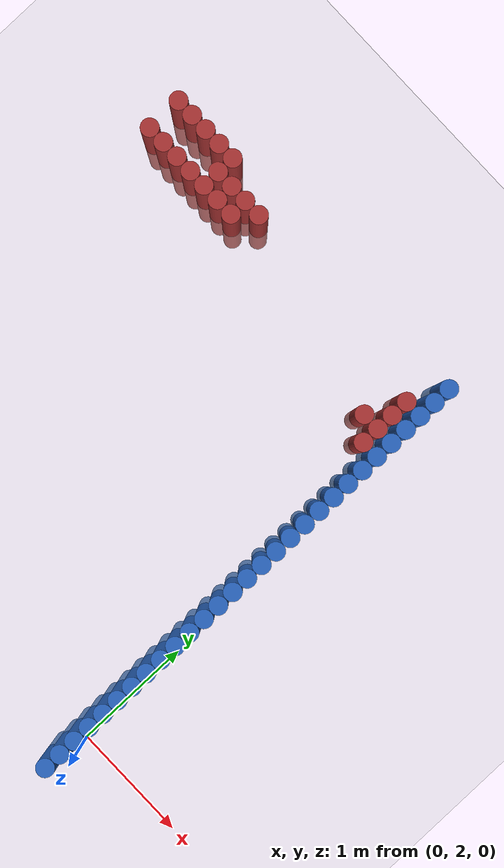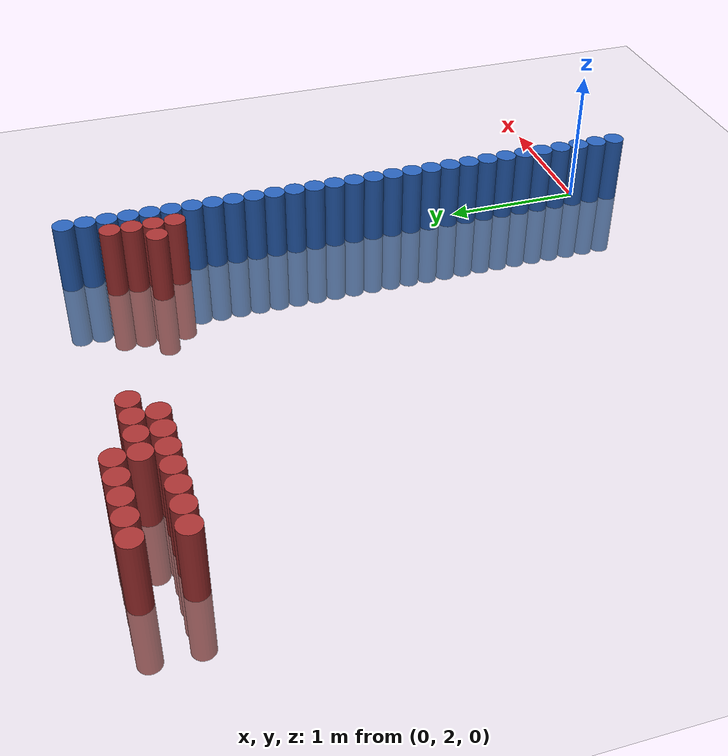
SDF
<sdf version="1.6">
 <world name="default">
  <model name="ground_plane">
   <static>1</static>
   <link name="link">
    <collision name="collision">
     <geometry><plane><normal>0 0 1</normal><size>100 100</size></plane></geometry>
     <surface><friction><ode><mu>100</mu><mu2>50</mu2></ode></friction></surface>
    </collision>
    <visual name="visual">
     <cast_shadows>0</cast_shadows>
     <geometry><plane><normal>0 0 1</normal><size>100 100</size></plane></geometry>
     <material>
      <script><uri>file://media/materials/scripts/gazebo.material</uri><name>Gazebo/Grey</name></script>
     </material>
    </visual>
   </link>
  </model>
  <model name="unit_cylinder_50">
   <static>1</static>
   <pose>-0.075000 1.725000 0.000000 0.000000 0.000000 0.000000</pose>
   <link name="link">
    <inertial>
     <mass>1</mass>
     <inertia><ixx>0.145833</ixx><ixy>0</ixy><ixz>0</ixz><iyy>0.145833</iyy><iyz>0</iyz><izz>0.125</izz></inertia>
    </inertial>
    <collision name="collision">
     <geometry><cylinder><radius>0.075000</radius><length>1</length></cylinder></geometry>
    </collision>
    <visual name="visual">
     <geometry><cylinder><radius>0.075000</radius><length>1</length></cylinder></geometry>
     <material>
      <ambient>0.152000 0.379000 0.720000 1</ambient>
      <diffuse>0.152000 0.379000 0.720000 1</diffuse>
     </material>
     <material>
      <script><name>Gazebo/Grey</name><uri>file://media/materials/scripts/gazebo.material</uri></script>
     </material>
    </visual>
   </link>
  </model>
  <model name="unit_cylinder_52">
   <static>1</static>
   <pose>-0.075000 1.875000 0.000000 0.000000 0.000000 0.000000</pose>
   <link name="link">
    <inertial>
     <mass>1</mass>
     <inertia><ixx>0.145833</ixx><ixy>0</ixy><ixz>0</ixz><iyy>0.145833</iyy><iyz>0</iyz><izz>0.125</izz></inertia>
    </inertial>
    <collision name="collision">
     <geometry><cylinder><radius>0.075000</radius><length>1</length></cylinder></geometry>
    </collision>
    <visual name="visual">
     <geometry><cylinder><radius>0.075000</radius><length>1</length></cylinder></geometry>
     <material>
      <ambient>0.152000 0.379000 0.720000 1</ambient>
      <diffuse>0.152000 0.379000 0.720000 1</diffuse>
     </material>
     <material>
      <script><name>Gazebo/Grey</name><uri>file://media/materials/scripts/gazebo.material</uri></script>
     </material>
    </visual>
   </link>
  </model>
  <model name="unit_cylinder_54">
   <static>1</static>
   <pose>-0.075000 2.025000 0.000000 0.000000 0.000000 0.000000</pose>
   <link name="link">
    <inertial>
     <mass>1</mass>
     <inertia><ixx>0.145833</ixx><ixy>0</ixy><ixz>0</ixz><iyy>0.145833</iyy><iyz>0</iyz><izz>0.125</izz></inertia>
    </inertial>
    <collision name="collision">
     <geometry><cylinder><radius>0.075000</radius><length>1</length></cylinder></geometry>
    </collision>
    <visual name="visual">
     <geometry><cylinder><radius>0.075000</radius><length>1</length></cylinder></geometry>
     <material>
      <ambient>0.152000 0.379000 0.720000 1</ambient>
      <diffuse>0.152000 0.379000 0.720000 1</diffuse>
     </material>
     <material>
      <script><name>Gazebo/Grey</name><uri>file://media/materials/scripts/gazebo.material</uri></script>
     </material>
    </visual>
   </link>
  </model>
  <model name="unit_cylinder_56">
   <static>1</static>
   <pose>-0.075000 2.175000 0.000000 0.000000 0.000000 0.000000</pose>
   <link name="link">
    <inertial>
     <mass>1</mass>
     <inertia><ixx>0.145833</ixx><ixy>0</ixy><ixz>0</ixz><iyy>0.145833</iyy><iyz>0</iyz><izz>0.125</izz></inertia>
    </inertial>
    <collision name="collision">
     <geometry><cylinder><radius>0.075000</radius><length>1</length></cylinder></geometry>
    </collision>
    <visual name="visual">
     <geometry><cylinder><radius>0.075000</radius><length>1</length></cylinder></geometry>
     <material>
      <ambient>0.152000 0.379000 0.720000 1</ambient>
      <diffuse>0.152000 0.379000 0.720000 1</diffuse>
     </material>
     <material>
      <script><name>Gazebo/Grey</name><uri>file://media/materials/scripts/gazebo.material</uri></script>
     </material>
    </visual>
   </link>
  </model>
  <model name="unit_cylinder_58">
   <static>1</static>
   <pose>-0.075000 2.325000 0.000000 0.000000 0.000000 0.000000</pose>
   <link name="link">
    <inertial>
     <mass>1</mass>
     <inertia><ixx>0.145833</ixx><ixy>0</ixy><ixz>0</ixz><iyy>0.145833</iyy><iyz>0</iyz><izz>0.125</izz></inertia>
    </inertial>
    <collision name="collision">
     <geometry><cylinder><radius>0.075000</radius><length>1</length></cylinder></geometry>
    </collision>
    <visual name="visual">
     <geometry><cylinder><radius>0.075000</radius><length>1</length></cylinder></geometry>
     <material>
      <ambient>0.152000 0.379000 0.720000 1</ambient>
      <diffuse>0.152000 0.379000 0.720000 1</diffuse>
     </material>
     <material>
      <script><name>Gazebo/Grey</name><uri>file://media/materials/scripts/gazebo.material</uri></script>
     </material>
    </visual>
   </link>
  </model>
  <model name="unit_cylinder_60">
   <static>1</static>
   <pose>-0.075000 2.475000 0.000000 0.000000 0.000000 0.000000</pose>
   <link name="link">
    <inertial>
     <mass>1</mass>
     <inertia><ixx>0.145833</ixx><ixy>0</ixy><ixz>0</ixz><iyy>0.145833</iyy><iyz>0</iyz><izz>0.125</izz></inertia>
    </inertial>
    <collision name="collision">
     <geometry><cylinder><radius>0.075000</radius><length>1</length></cylinder></geometry>
    </collision>
    <visual name="visual">
     <geometry><cylinder><radius>0.075000</radius><length>1</length></cylinder></geometry>
     <material>
      <ambient>0.152000 0.379000 0.720000 1</ambient>
      <diffuse>0.152000 0.379000 0.720000 1</diffuse>
     </material>
     <material>
      <script><name>Gazebo/Grey</name><uri>file://media/materials/scripts/gazebo.material</uri></script>
     </material>
    </visual>
   </link>
  </model>
  <model name="unit_cylinder_62">
   <static>1</static>
   <pose>-0.075000 2.625000 0.000000 0.000000 0.000000 0.000000</pose>
   <link name="link">
    <inertial>
     <mass>1</mass>
     <inertia><ixx>0.145833</ixx><ixy>0</ixy><ixz>0</ixz><iyy>0.145833</iyy><iyz>0</iyz><izz>0.125</izz></inertia>
    </inertial>
    <collision name="collision">
     <geometry><cylinder><radius>0.075000</radius><length>1</length></cylinder></geometry>
    </collision>
    <visual name="visual">
     <geometry><cylinder><radius>0.075000</radius><length>1</length></cylinder></geometry>
     <material>
      <ambient>0.152000 0.379000 0.720000 1</ambient>
      <diffuse>0.152000 0.379000 0.720000 1</diffuse>
     </material>
     <material>
      <script><name>Gazebo/Grey</name><uri>file://media/materials/scripts/gazebo.material</uri></script>
     </material>
    </visual>
   </link>
  </model>
  <model name="unit_cylinder_64">
   <static>1</static>
   <pose>-0.075000 2.775000 0.000000 0.000000 0.000000 0.000000</pose>
   <link name="link">
    <inertial>
     <mass>1</mass>
     <inertia><ixx>0.145833</ixx><ixy>0</ixy><ixz>0</ixz><iyy>0.145833</iyy><iyz>0</iyz><izz>0.125</izz></inertia>
    </inertial>
    <collision name="collision">
     <geometry><cylinder><radius>0.075000</radius><length>1</length></cylinder></geometry>
    </collision>
    <visual name="visual">
     <geometry><cylinder><radius>0.075000</radius><length>1</length></cylinder></geometry>
     <material>
      <ambient>0.152000 0.379000 0.720000 1</ambient>
      <diffuse>0.152000 0.379000 0.720000 1</diffuse>
     </material>
     <material>
      <script><name>Gazebo/Grey</name><uri>file://media/materials/scripts/gazebo.material</uri></script>
     </material>
    </visual>
   </link>
  </model>
  <model name="unit_cylinder_66">
   <static>1</static>
   <pose>-0.075000 2.925000 0.000000 0.000000 0.000000 0.000000</pose>
   <link name="link">
    <inertial>
     <mass>1</mass>
     <inertia><ixx>0.145833</ixx><ixy>0</ixy><ixz>0</ixz><iyy>0.145833</iyy><iyz>0</iyz><izz>0.125</izz></inertia>
    </inertial>
    <collision name="collision">
     <geometry><cylinder><radius>0.075000</radius><length>1</length></cylinder></geometry>
    </collision>
    <visual name="visual">
     <geometry><cylinder><radius>0.075000</radius><length>1</length></cylinder></geometry>
     <material>
      <ambient>0.152000 0.379000 0.720000 1</ambient>
      <diffuse>0.152000 0.379000 0.720000 1</diffuse>
     </material>
     <material>
      <script><name>Gazebo/Grey</name><uri>file://media/materials/scripts/gazebo.material</uri></script>
     </material>
    </visual>
   </link>
  </model>
  <model name="unit_cylinder_68">
   <static>1</static>
   <pose>-0.075000 3.075000 0.000000 0.000000 0.000000 0.000000</pose>
   <link name="link">
    <inertial>
     <mass>1</mass>
     <inertia><ixx>0.145833</ixx><ixy>0</ixy><ixz>0</ixz><iyy>0.145833</iyy><iyz>0</iyz><izz>0.125</izz></inertia>
    </inertial>
    <collision name="collision">
     <geometry><cylinder><radius>0.075000</radius><length>1</length></cylinder></geometry>
    </collision>
    <visual name="visual">
     <geometry><cylinder><radius>0.075000</radius><length>1</length></cylinder></geometry>
     <material>
      <ambient>0.152000 0.379000 0.720000 1</ambient>
      <diffuse>0.152000 0.379000 0.720000 1</diffuse>
     </material>
     <material>
      <script><name>Gazebo/Grey</name><uri>file://media/materials/scripts/gazebo.material</uri></script>
     </material>
    </visual>
   </link>
  </model>
  <model name="unit_cylinder_70">
   <static>1</static>
   <pose>-0.075000 3.225000 0.000000 0.000000 0.000000 0.000000</pose>
   <link name="link">
    <inertial>
     <mass>1</mass>
     <inertia><ixx>0.145833</ixx><ixy>0</ixy><ixz>0</ixz><iyy>0.145833</iyy><iyz>0</iyz><izz>0.125</izz></inertia>
    </inertial>
    <collision name="collision">
     <geometry><cylinder><radius>0.075000</radius><length>1</length></cylinder></geometry>
    </collision>
    <visual name="visual">
     <geometry><cylinder><radius>0.075000</radius><length>1</length></cylinder></geometry>
     <material>
      <ambient>0.152000 0.379000 0.720000 1</ambient>
      <diffuse>0.152000 0.379000 0.720000 1</diffuse>
     </material>
     <material>
      <script><name>Gazebo/Grey</name><uri>file://media/materials/scripts/gazebo.material</uri></script>
     </material>
    </visual>
   </link>
  </model>
  <model name="unit_cylinder_72">
   <static>1</static>
   <pose>-0.075000 3.375000 0.000000 0.000000 0.000000 0.000000</pose>
   <link name="link">
    <inertial>
     <mass>1</mass>
     <inertia><ixx>0.145833</ixx><ixy>0</ixy><ixz>0</ixz><iyy>0.145833</iyy><iyz>0</iyz><izz>0.125</izz></inertia>
    </inertial>
    <collision name="collision">
     <geometry><cylinder><radius>0.075000</radius><length>1</length></cylinder></geometry>
    </collision>
    <visual name="visual">
     <geometry><cylinder><radius>0.075000</radius><length>1</length></cylinder></geometry>
     <material>
      <ambient>0.152000 0.379000 0.720000 1</ambient>
      <diffuse>0.152000 0.379000 0.720000 1</diffuse>
     </material>
     <material>
      <script><name>Gazebo/Grey</name><uri>file://media/materials/scripts/gazebo.material</uri></script>
     </material>
    </visual>
   </link>
  </model>
  <model name="unit_cylinder_74">
   <static>1</static>
   <pose>-0.075000 3.525000 0.000000 0.000000 0.000000 0.000000</pose>
   <link name="link">
    <inertial>
     <mass>1</mass>
     <inertia><ixx>0.145833</ixx><ixy>0</ixy><ixz>0</ixz><iyy>0.145833</iyy><iyz>0</iyz><izz>0.125</izz></inertia>
    </inertial>
    <collision name="collision">
     <geometry><cylinder><radius>0.075000</radius><length>1</length></cylinder></geometry>
    </collision>
    <visual name="visual">
     <geometry><cylinder><radius>0.075000</radius><length>1</length></cylinder></geometry>
     <material>
      <ambient>0.152000 0.379000 0.720000 1</ambient>
      <diffuse>0.152000 0.379000 0.720000 1</diffuse>
     </material>
     <material>
      <script><name>Gazebo/Grey</name><uri>file://media/materials/scripts/gazebo.material</uri></script>
     </material>
    </visual>
   </link>
  </model>
  <model name="unit_cylinder_76">
   <static>1</static>
   <pose>-0.075000 3.675000 0.000000 0.000000 0.000000 0.000000</pose>
   <link name="link">
    <inertial>
     <mass>1</mass>
     <inertia><ixx>0.145833</ixx><ixy>0</ixy><ixz>0</ixz><iyy>0.145833</iyy><iyz>0</iyz><izz>0.125</izz></inertia>
    </inertial>
    <collision name="collision">
     <geometry><cylinder><radius>0.075000</radius><length>1</length></cylinder></geometry>
    </collision>
    <visual name="visual">
     <geometry><cylinder><radius>0.075000</radius><length>1</length></cylinder></geometry>
     <material>
      <ambient>0.152000 0.379000 0.720000 1</ambient>
      <diffuse>0.152000 0.379000 0.720000 1</diffuse>
     </material>
     <material>
      <script><name>Gazebo/Grey</name><uri>file://media/materials/scripts/gazebo.material</uri></script>
     </material>
    </visual>
   </link>
  </model>
  <model name="unit_cylinder_78">
   <static>1</static>
   <pose>-0.075000 3.825000 0.000000 0.000000 0.000000 0.000000</pose>
   <link name="link">
    <inertial>
     <mass>1</mass>
     <inertia><ixx>0.145833</ixx><ixy>0</ixy><ixz>0</ixz><iyy>0.145833</iyy><iyz>0</iyz><izz>0.125</izz></inertia>
    </inertial>
    <collision name="collision">
     <geometry><cylinder><radius>0.075000</radius><length>1</length></cylinder></geometry>
    </collision>
    <visual name="visual">
     <geometry><cylinder><radius>0.075000</radius><length>1</length></cylinder></geometry>
     <material>
      <ambient>0.152000 0.379000 0.720000 1</ambient>
      <diffuse>0.152000 0.379000 0.720000 1</diffuse>
     </material>
     <material>
      <script><name>Gazebo/Grey</name><uri>file://media/materials/scripts/gazebo.material</uri></script>
     </material>
    </visual>
   </link>
  </model>
  <model name="unit_cylinder_80">
   <static>1</static>
   <pose>-0.075000 3.975000 0.000000 0.000000 0.000000 0.000000</pose>
   <link name="link">
    <inertial>
     <mass>1</mass>
     <inertia><ixx>0.145833</ixx><ixy>0</ixy><ixz>0</ixz><iyy>0.145833</iyy><iyz>0</iyz><izz>0.125</izz></inertia>
    </inertial>
    <collision name="collision">
     <geometry><cylinder><radius>0.075000</radius><length>1</length></cylinder></geometry>
    </collision>
    <visual name="visual">
     <geometry><cylinder><radius>0.075000</radius><length>1</length></cylinder></geometry>
     <material>
      <ambient>0.152000 0.379000 0.720000 1</ambient>
      <diffuse>0.152000 0.379000 0.720000 1</diffuse>
     </material>
     <material>
      <script><name>Gazebo/Grey</name><uri>file://media/materials/scripts/gazebo.material</uri></script>
     </material>
    </visual>
   </link>
  </model>
  <model name="unit_cylinder_82">
   <static>1</static>
   <pose>-0.075000 4.125000 0.000000 0.000000 0.000000 0.000000</pose>
   <link name="link">
    <inertial>
     <mass>1</mass>
     <inertia><ixx>0.145833</ixx><ixy>0</ixy><ixz>0</ixz><iyy>0.145833</iyy><iyz>0</iyz><izz>0.125</izz></inertia>
    </inertial>
    <collision name="collision">
     <geometry><cylinder><radius>0.075000</radius><length>1</length></cylinder></geometry>
    </collision>
    <visual name="visual">
     <geometry><cylinder><radius>0.075000</radius><length>1</length></cylinder></geometry>
     <material>
      <ambient>0.152000 0.379000 0.720000 1</ambient>
      <diffuse>0.152000 0.379000 0.720000 1</diffuse>
     </material>
     <material>
      <script><name>Gazebo/Grey</name><uri>file://media/materials/scripts/gazebo.material</uri></script>
     </material>
    </visual>
   </link>
  </model>
  <model name="unit_cylinder_84">
   <static>1</static>
   <pose>-0.075000 4.275000 0.000000 0.000000 0.000000 0.000000</pose>
   <link name="link">
    <inertial>
     <mass>1</mass>
     <inertia><ixx>0.145833</ixx><ixy>0</ixy><ixz>0</ixz><iyy>0.145833</iyy><iyz>0</iyz><izz>0.125</izz></inertia>
    </inertial>
    <collision name="collision">
     <geometry><cylinder><radius>0.075000</radius><length>1</length></cylinder></geometry>
    </collision>
    <visual name="visual">
     <geometry><cylinder><radius>0.075000</radius><length>1</length></cylinder></geometry>
     <material>
      <ambient>0.152000 0.379000 0.720000 1</ambient>
      <diffuse>0.152000 0.379000 0.720000 1</diffuse>
     </material>
     <material>
      <script><name>Gazebo/Grey</name><uri>file://media/materials/scripts/gazebo.material</uri></script>
     </material>
    </visual>
   </link>
  </model>
  <model name="unit_cylinder_86">
   <static>1</static>
   <pose>-0.075000 4.425000 0.000000 0.000000 0.000000 0.000000</pose>
   <link name="link">
    <inertial>
     <mass>1</mass>
     <inertia><ixx>0.145833</ixx><ixy>0</ixy><ixz>0</ixz><iyy>0.145833</iyy><iyz>0</iyz><izz>0.125</izz></inertia>
    </inertial>
    <collision name="collision">
     <geometry><cylinder><radius>0.075000</radius><length>1</length></cylinder></geometry>
    </collision>
    <visual name="visual">
     <geometry><cylinder><radius>0.075000</radius><length>1</length></cylinder></geometry>
     <material>
      <ambient>0.152000 0.379000 0.720000 1</ambient>
      <diffuse>0.152000 0.379000 0.720000 1</diffuse>
     </material>
     <material>
      <script><name>Gazebo/Grey</name><uri>file://media/materials/scripts/gazebo.material</uri></script>
     </material>
    </visual>
   </link>
  </model>
  <model name="unit_cylinder_88">
   <static>1</static>
   <pose>-0.075000 4.575000 0.000000 0.000000 0.000000 0.000000</pose>
   <link name="link">
    <inertial>
     <mass>1</mass>
     <inertia><ixx>0.145833</ixx><ixy>0</ixy><ixz>0</ixz><iyy>0.145833</iyy><iyz>0</iyz><izz>0.125</izz></inertia>
    </inertial>
    <collision name="collision">
     <geometry><cylinder><radius>0.075000</radius><length>1</length></cylinder></geometry>
    </collision>
    <visual name="visual">
     <geometry><cylinder><radius>0.075000</radius><length>1</length></cylinder></geometry>
     <material>
      <ambient>0.152000 0.379000 0.720000 1</ambient>
      <diffuse>0.152000 0.379000 0.720000 1</diffuse>
     </material>
     <material>
      <script><name>Gazebo/Grey</name><uri>file://media/materials/scripts/gazebo.material</uri></script>
     </material>
    </visual>
   </link>
  </model>
  <model name="unit_cylinder_90">
   <static>1</static>
   <pose>-0.075000 4.725000 0.000000 0.000000 0.000000 0.000000</pose>
   <link name="link">
    <inertial>
     <mass>1</mass>
     <inertia><ixx>0.145833</ixx><ixy>0</ixy><ixz>0</ixz><iyy>0.145833</iyy><iyz>0</iyz><izz>0.125</izz></inertia>
    </inertial>
    <collision name="collision">
     <geometry><cylinder><radius>0.075000</radius><length>1</length></cylinder></geometry>
    </collision>
    <visual name="visual">
     <geometry><cylinder><radius>0.075000</radius><length>1</length></cylinder></geometry>
     <material>
      <ambient>0.152000 0.379000 0.720000 1</ambient>
      <diffuse>0.152000 0.379000 0.720000 1</diffuse>
     </material>
     <material>
      <script><name>Gazebo/Grey</name><uri>file://media/materials/scripts/gazebo.material</uri></script>
     </material>
    </visual>
   </link>
  </model>
  <model name="unit_cylinder_92">
   <static>1</static>
   <pose>-0.075000 4.875000 0.000000 0.000000 0.000000 0.000000</pose>
   <link name="link">
    <inertial>
     <mass>1</mass>
     <inertia><ixx>0.145833</ixx><ixy>0</ixy><ixz>0</ixz><iyy>0.145833</iyy><iyz>0</iyz><izz>0.125</izz></inertia>
    </inertial>
    <collision name="collision">
     <geometry><cylinder><radius>0.075000</radius><length>1</length></cylinder></geometry>
    </collision>
    <visual name="visual">
     <geometry><cylinder><radius>0.075000</radius><length>1</length></cylinder></geometry>
     <material>
      <ambient>0.152000 0.379000 0.720000 1</ambient>
      <diffuse>0.152000 0.379000 0.720000 1</diffuse>
     </material>
     <material>
      <script><name>Gazebo/Grey</name><uri>file://media/materials/scripts/gazebo.material</uri></script>
     </material>
    </visual>
   </link>
  </model>
  <model name="unit_cylinder_94">
   <static>1</static>
   <pose>-0.075000 5.025000 0.000000 0.000000 0.000000 0.000000</pose>
   <link name="link">
    <inertial>
     <mass>1</mass>
     <inertia><ixx>0.145833</ixx><ixy>0</ixy><ixz>0</ixz><iyy>0.145833</iyy><iyz>0</iyz><izz>0.125</izz></inertia>
    </inertial>
    <collision name="collision">
     <geometry><cylinder><radius>0.075000</radius><length>1</length></cylinder></geometry>
    </collision>
    <visual name="visual">
     <geometry><cylinder><radius>0.075000</radius><length>1</length></cylinder></geometry>
     <material>
      <ambient>0.152000 0.379000 0.720000 1</ambient>
      <diffuse>0.152000 0.379000 0.720000 1</diffuse>
     </material>
     <material>
      <script><name>Gazebo/Grey</name><uri>file://media/materials/scripts/gazebo.material</uri></script>
     </material>
    </visual>
   </link>
  </model>
  <model name="unit_cylinder_200">
   <static>1</static>
   <pose>-3.075000 5.625000 0.000000 0.000000 0.000000 0.000000</pose>
   <link name="link">
    <inertial>
     <mass>1</mass>
     <inertia><ixx>0.145833</ixx><ixy>0</ixy><ixz>0</ixz><iyy>0.145833</iyy><iyz>0</iyz><izz>0.125</izz></inertia>
    </inertial>
    <collision name="collision">
     <geometry><cylinder><radius>0.075000</radius><length>1</length></cylinder></geometry>
    </collision>
    <visual name="visual">
     <geometry><cylinder><radius>0.075000</radius><length>1</length></cylinder></geometry>
     <material>
      <ambient>0.648000 0.192000 0.192000 1</ambient>
      <diffuse>0.648000 0.192000 0.192000 1</diffuse>
     </material>
     <material>
      <script><name>Gazebo/Grey</name><uri>file://media/materials/scripts/gazebo.material</uri></script>
     </material>
    </visual>
   </link>
  </model>
  <model name="unit_cylinder_201">
   <static>1</static>
   <pose>-3.075000 5.925000 0.000000 0.000000 0.000000 0.000000</pose>
   <link name="link">
    <inertial>
     <mass>1</mass>
     <inertia><ixx>0.145833</ixx><ixy>0</ixy><ixz>0</ixz><iyy>0.145833</iyy><iyz>0</iyz><izz>0.125</izz></inertia>
    </inertial>
    <collision name="collision">
     <geometry><cylinder><radius>0.075000</radius><length>1</length></cylinder></geometry>
    </collision>
    <visual name="visual">
     <geometry><cylinder><radius>0.075000</radius><length>1</length></cylinder></geometry>
     <material>
      <ambient>0.648000 0.192000 0.192000 1</ambient>
      <diffuse>0.648000 0.192000 0.192000 1</diffuse>
     </material>
     <material>
      <script><name>Gazebo/Grey</name><uri>file://media/materials/scripts/gazebo.material</uri></script>
     </material>
    </visual>
   </link>
  </model>
  <model name="unit_cylinder_206">
   <static>1</static>
   <pose>-2.925000 5.625000 0.000000 0.000000 0.000000 0.000000</pose>
   <link name="link">
    <inertial>
     <mass>1</mass>
     <inertia><ixx>0.145833</ixx><ixy>0</ixy><ixz>0</ixz><iyy>0.145833</iyy><iyz>0</iyz><izz>0.125</izz></inertia>
    </inertial>
    <collision name="collision">
     <geometry><cylinder><radius>0.075000</radius><length>1</length></cylinder></geometry>
    </collision>
    <visual name="visual">
     <geometry><cylinder><radius>0.075000</radius><length>1</length></cylinder></geometry>
     <material>
      <ambient>0.648000 0.192000 0.192000 1</ambient>
      <diffuse>0.648000 0.192000 0.192000 1</diffuse>
     </material>
     <material>
      <script><name>Gazebo/Grey</name><uri>file://media/materials/scripts/gazebo.material</uri></script>
     </material>
    </visual>
   </link>
  </model>
  <model name="unit_cylinder_207">
   <static>1</static>
   <pose>-2.925000 5.925000 0.000000 0.000000 0.000000 0.000000</pose>
   <link name="link">
    <inertial>
     <mass>1</mass>
     <inertia><ixx>0.145833</ixx><ixy>0</ixy><ixz>0</ixz><iyy>0.145833</iyy><iyz>0</iyz><izz>0.125</izz></inertia>
    </inertial>
    <collision name="collision">
     <geometry><cylinder><radius>0.075000</radius><length>1</length></cylinder></geometry>
    </collision>
    <visual name="visual">
     <geometry><cylinder><radius>0.075000</radius><length>1</length></cylinder></geometry>
     <material>
      <ambient>0.648000 0.192000 0.192000 1</ambient>
      <diffuse>0.648000 0.192000 0.192000 1</diffuse>
     </material>
     <material>
      <script><name>Gazebo/Grey</name><uri>file://media/materials/scripts/gazebo.material</uri></script>
     </material>
    </visual>
   </link>
  </model>
  <model name="unit_cylinder_213">
   <static>1</static>
   <pose>-2.775000 5.625000 0.000000 0.000000 0.000000 0.000000</pose>
   <link name="link">
    <inertial>
     <mass>1</mass>
     <inertia><ixx>0.145833</ixx><ixy>0</ixy><ixz>0</ixz><iyy>0.145833</iyy><iyz>0</iyz><izz>0.125</izz></inertia>
    </inertial>
    <collision name="collision">
     <geometry><cylinder><radius>0.075000</radius><length>1</length></cylinder></geometry>
    </collision>
    <visual name="visual">
     <geometry><cylinder><radius>0.075000</radius><length>1</length></cylinder></geometry>
     <material>
      <ambient>0.648000 0.192000 0.192000 1</ambient>
      <diffuse>0.648000 0.192000 0.192000 1</diffuse>
     </material>
     <material>
      <script><name>Gazebo/Grey</name><uri>file://media/materials/scripts/gazebo.material</uri></script>
     </material>
    </visual>
   </link>
  </model>
  <model name="unit_cylinder_214">
   <static>1</static>
   <pose>-2.775000 5.925000 0.000000 0.000000 0.000000 0.000000</pose>
   <link name="link">
    <inertial>
     <mass>1</mass>
     <inertia><ixx>0.145833</ixx><ixy>0</ixy><ixz>0</ixz><iyy>0.145833</iyy><iyz>0</iyz><izz>0.125</izz></inertia>
    </inertial>
    <collision name="collision">
     <geometry><cylinder><radius>0.075000</radius><length>1</length></cylinder></geometry>
    </collision>
    <visual name="visual">
     <geometry><cylinder><radius>0.075000</radius><length>1</length></cylinder></geometry>
     <material>
      <ambient>0.648000 0.192000 0.192000 1</ambient>
      <diffuse>0.648000 0.192000 0.192000 1</diffuse>
     </material>
     <material>
      <script><name>Gazebo/Grey</name><uri>file://media/materials/scripts/gazebo.material</uri></script>
     </material>
    </visual>
   </link>
  </model>
  <model name="unit_cylinder_218">
   <static>1</static>
   <pose>-2.625000 5.625000 0.000000 0.000000 0.000000 0.000000</pose>
   <link name="link">
    <inertial>
     <mass>1</mass>
     <inertia><ixx>0.145833</ixx><ixy>0</ixy><ixz>0</ixz><iyy>0.145833</iyy><iyz>0</iyz><izz>0.125</izz></inertia>
    </inertial>
    <collision name="collision">
     <geometry><cylinder><radius>0.075000</radius><length>1</length></cylinder></geometry>
    </collision>
    <visual name="visual">
     <geometry><cylinder><radius>0.075000</radius><length>1</length></cylinder></geometry>
     <material>
      <ambient>0.648000 0.192000 0.192000 1</ambient>
      <diffuse>0.648000 0.192000 0.192000 1</diffuse>
     </material>
     <material>
      <script><name>Gazebo/Grey</name><uri>file://media/materials/scripts/gazebo.material</uri></script>
     </material>
    </visual>
   </link>
  </model>
  <model name="unit_cylinder_219">
   <static>1</static>
   <pose>-2.625000 5.925000 0.000000 0.000000 0.000000 0.000000</pose>
   <link name="link">
    <inertial>
     <mass>1</mass>
     <inertia><ixx>0.145833</ixx><ixy>0</ixy><ixz>0</ixz><iyy>0.145833</iyy><iyz>0</iyz><izz>0.125</izz></inertia>
    </inertial>
    <collision name="collision">
     <geometry><cylinder><radius>0.075000</radius><length>1</length></cylinder></geometry>
    </collision>
    <visual name="visual">
     <geometry><cylinder><radius>0.075000</radius><length>1</length></cylinder></geometry>
     <material>
      <ambient>0.648000 0.192000 0.192000 1</ambient>
      <diffuse>0.648000 0.192000 0.192000 1</diffuse>
     </material>
     <material>
      <script><name>Gazebo/Grey</name><uri>file://media/materials/scripts/gazebo.material</uri></script>
     </material>
    </visual>
   </link>
  </model>
  <model name="unit_cylinder_223">
   <static>1</static>
   <pose>-2.475000 5.625000 0.000000 0.000000 0.000000 0.000000</pose>
   <link name="link">
    <inertial>
     <mass>1</mass>
     <inertia><ixx>0.145833</ixx><ixy>0</ixy><ixz>0</ixz><iyy>0.145833</iyy><iyz>0</iyz><izz>0.125</izz></inertia>
    </inertial>
    <collision name="collision">
     <geometry><cylinder><radius>0.075000</radius><length>1</length></cylinder></geometry>
    </collision>
    <visual name="visual">
     <geometry><cylinder><radius>0.075000</radius><length>1</length></cylinder></geometry>
     <material>
      <ambient>0.648000 0.192000 0.192000 1</ambient>
      <diffuse>0.648000 0.192000 0.192000 1</diffuse>
     </material>
     <material>
      <script><name>Gazebo/Grey</name><uri>file://media/materials/scripts/gazebo.material</uri></script>
     </material>
    </visual>
   </link>
  </model>
  <model name="unit_cylinder_224">
   <static>1</static>
   <pose>-2.475000 5.775000 0.000000 0.000000 0.000000 0.000000</pose>
   <link name="link">
    <inertial>
     <mass>1</mass>
     <inertia><ixx>0.145833</ixx><ixy>0</ixy><ixz>0</ixz><iyy>0.145833</iyy><iyz>0</iyz><izz>0.125</izz></inertia>
    </inertial>
    <collision name="collision">
     <geometry><cylinder><radius>0.075000</radius><length>1</length></cylinder></geometry>
    </collision>
    <visual name="visual">
     <geometry><cylinder><radius>0.075000</radius><length>1</length></cylinder></geometry>
     <material>
      <ambient>0.648000 0.192000 0.192000 1</ambient>
      <diffuse>0.648000 0.192000 0.192000 1</diffuse>
     </material>
     <material>
      <script><name>Gazebo/Grey</name><uri>file://media/materials/scripts/gazebo.material</uri></script>
     </material>
    </visual>
   </link>
  </model>
  <model name="unit_cylinder_225">
   <static>1</static>
   <pose>-2.475000 5.925000 0.000000 0.000000 0.000000 0.000000</pose>
   <link name="link">
    <inertial>
     <mass>1</mass>
     <inertia><ixx>0.145833</ixx><ixy>0</ixy><ixz>0</ixz><iyy>0.145833</iyy><iyz>0</iyz><izz>0.125</izz></inertia>
    </inertial>
    <collision name="collision">
     <geometry><cylinder><radius>0.075000</radius><length>1</length></cylinder></geometry>
    </collision>
    <visual name="visual">
     <geometry><cylinder><radius>0.075000</radius><length>1</length></cylinder></geometry>
     <material>
      <ambient>0.648000 0.192000 0.192000 1</ambient>
      <diffuse>0.648000 0.192000 0.192000 1</diffuse>
     </material>
     <material>
      <script><name>Gazebo/Grey</name><uri>file://media/materials/scripts/gazebo.material</uri></script>
     </material>
    </visual>
   </link>
  </model>
  <model name="unit_cylinder_233">
   <static>1</static>
   <pose>-2.325000 5.625000 0.000000 0.000000 0.000000 0.000000</pose>
   <link name="link">
    <inertial>
     <mass>1</mass>
     <inertia><ixx>0.145833</ixx><ixy>0</ixy><ixz>0</ixz><iyy>0.145833</iyy><iyz>0</iyz><izz>0.125</izz></inertia>
    </inertial>
    <collision name="collision">
     <geometry><cylinder><radius>0.075000</radius><length>1</length></cylinder></geometry>
    </collision>
    <visual name="visual">
     <geometry><cylinder><radius>0.075000</radius><length>1</length></cylinder></geometry>
     <material>
      <ambient>0.648000 0.192000 0.192000 1</ambient>
      <diffuse>0.648000 0.192000 0.192000 1</diffuse>
     </material>
     <material>
      <script><name>Gazebo/Grey</name><uri>file://media/materials/scripts/gazebo.material</uri></script>
     </material>
    </visual>
   </link>
  </model>
  <model name="unit_cylinder_234">
   <static>1</static>
   <pose>-2.325000 5.775000 0.000000 0.000000 0.000000 0.000000</pose>
   <link name="link">
    <inertial>
     <mass>1</mass>
     <inertia><ixx>0.145833</ixx><ixy>0</ixy><ixz>0</ixz><iyy>0.145833</iyy><iyz>0</iyz><izz>0.125</izz></inertia>
    </inertial>
    <collision name="collision">
     <geometry><cylinder><radius>0.075000</radius><length>1</length></cylinder></geometry>
    </collision>
    <visual name="visual">
     <geometry><cylinder><radius>0.075000</radius><length>1</length></cylinder></geometry>
     <material>
      <ambient>0.648000 0.192000 0.192000 1</ambient>
      <diffuse>0.648000 0.192000 0.192000 1</diffuse>
     </material>
     <material>
      <script><name>Gazebo/Grey</name><uri>file://media/materials/scripts/gazebo.material</uri></script>
     </material>
    </visual>
   </link>
  </model>
  <model name="unit_cylinder_245">
   <static>1</static>
   <pose>-2.175000 5.625000 0.000000 0.000000 0.000000 0.000000</pose>
   <link name="link">
    <inertial>
     <mass>1</mass>
     <inertia><ixx>0.145833</ixx><ixy>0</ixy><ixz>0</ixz><iyy>0.145833</iyy><iyz>0</iyz><izz>0.125</izz></inertia>
    </inertial>
    <collision name="collision">
     <geometry><cylinder><radius>0.075000</radius><length>1</length></cylinder></geometry>
    </collision>
    <visual name="visual">
     <geometry><cylinder><radius>0.075000</radius><length>1</length></cylinder></geometry>
     <material>
      <ambient>0.648000 0.192000 0.192000 1</ambient>
      <diffuse>0.648000 0.192000 0.192000 1</diffuse>
     </material>
     <material>
      <script><name>Gazebo/Grey</name><uri>file://media/materials/scripts/gazebo.material</uri></script>
     </material>
    </visual>
   </link>
  </model>
  <model name="unit_cylinder_246">
   <static>1</static>
   <pose>-2.175000 5.775000 0.000000 0.000000 0.000000 0.000000</pose>
   <link name="link">
    <inertial>
     <mass>1</mass>
     <inertia><ixx>0.145833</ixx><ixy>0</ixy><ixz>0</ixz><iyy>0.145833</iyy><iyz>0</iyz><izz>0.125</izz></inertia>
    </inertial>
    <collision name="collision">
     <geometry><cylinder><radius>0.075000</radius><length>1</length></cylinder></geometry>
    </collision>
    <visual name="visual">
     <geometry><cylinder><radius>0.075000</radius><length>1</length></cylinder></geometry>
     <material>
      <ambient>0.648000 0.192000 0.192000 1</ambient>
      <diffuse>0.648000 0.192000 0.192000 1</diffuse>
     </material>
     <material>
      <script><name>Gazebo/Grey</name><uri>file://media/materials/scripts/gazebo.material</uri></script>
     </material>
    </visual>
   </link>
  </model>
  <model name="unit_cylinder_255">
   <static>1</static>
   <pose>-2.025000 5.775000 0.000000 0.000000 0.000000 0.000000</pose>
   <link name="link">
    <inertial>
     <mass>1</mass>
     <inertia><ixx>0.145833</ixx><ixy>0</ixy><ixz>0</ixz><iyy>0.145833</iyy><iyz>0</iyz><izz>0.125</izz></inertia>
    </inertial>
    <collision name="collision">
     <geometry><cylinder><radius>0.075000</radius><length>1</length></cylinder></geometry>
    </collision>
    <visual name="visual">
     <geometry><cylinder><radius>0.075000</radius><length>1</length></cylinder></geometry>
     <material>
      <ambient>0.648000 0.192000 0.192000 1</ambient>
      <diffuse>0.648000 0.192000 0.192000 1</diffuse>
     </material>
     <material>
      <script><name>Gazebo/Grey</name><uri>file://media/materials/scripts/gazebo.material</uri></script>
     </material>
    </visual>
   </link>
  </model>
  <model name="unit_cylinder_285">
   <static>1</static>
   <pose>-0.375000 5.325000 0.000000 0.000000 0.000000 0.000000</pose>
   <link name="link">
    <inertial>
     <mass>1</mass>
     <inertia><ixx>0.145833</ixx><ixy>0</ixy><ixz>0</ixz><iyy>0.145833</iyy><iyz>0</iyz><izz>0.125</izz></inertia>
    </inertial>
    <collision name="collision">
     <geometry><cylinder><radius>0.075000</radius><length>1</length></cylinder></geometry>
    </collision>
    <visual name="visual">
     <geometry><cylinder><radius>0.075000</radius><length>1</length></cylinder></geometry>
     <material>
      <ambient>0.648000 0.192000 0.192000 1</ambient>
      <diffuse>0.648000 0.192000 0.192000 1</diffuse>
     </material>
     <material>
      <script><name>Gazebo/Grey</name><uri>file://media/materials/scripts/gazebo.material</uri></script>
     </material>
    </visual>
   </link>
  </model>
  <model name="unit_cylinder_294">
   <static>1</static>
   <pose>-0.225000 5.175000 0.000000 0.000000 0.000000 0.000000</pose>
   <link name="link">
    <inertial>
     <mass>1</mass>
     <inertia><ixx>0.145833</ixx><ixy>0</ixy><ixz>0</ixz><iyy>0.145833</iyy><iyz>0</iyz><izz>0.125</izz></inertia>
    </inertial>
    <collision name="collision">
     <geometry><cylinder><radius>0.075000</radius><length>1</length></cylinder></geometry>
    </collision>
    <visual name="visual">
     <geometry><cylinder><radius>0.075000</radius><length>1</length></cylinder></geometry>
     <material>
      <ambient>0.648000 0.192000 0.192000 1</ambient>
      <diffuse>0.648000 0.192000 0.192000 1</diffuse>
     </material>
     <material>
      <script><name>Gazebo/Grey</name><uri>file://media/materials/scripts/gazebo.material</uri></script>
     </material>
    </visual>
   </link>
  </model>
  <model name="unit_cylinder_295">
   <static>1</static>
   <pose>-0.225000 5.325000 0.000000 0.000000 0.000000 0.000000</pose>
   <link name="link">
    <inertial>
     <mass>1</mass>
     <inertia><ixx>0.145833</ixx><ixy>0</ixy><ixz>0</ixz><iyy>0.145833</iyy><iyz>0</iyz><izz>0.125</izz></inertia>
    </inertial>
    <collision name="collision">
     <geometry><cylinder><radius>0.075000</radius><length>1</length></cylinder></geometry>
    </collision>
    <visual name="visual">
     <geometry><cylinder><radius>0.075000</radius><length>1</length></cylinder></geometry>
     <material>
      <ambient>0.648000 0.192000 0.192000 1</ambient>
      <diffuse>0.648000 0.192000 0.192000 1</diffuse>
     </material>
     <material>
      <script><name>Gazebo/Grey</name><uri>file://media/materials/scripts/gazebo.material</uri></script>
     </material>
    </visual>
   </link>
  </model>
  <model name="unit_cylinder_296">
   <static>1</static>
   <pose>-0.225000 5.475000 0.000000 0.000000 0.000000 0.000000</pose>
   <link name="link">
    <inertial>
     <mass>1</mass>
     <inertia><ixx>0.145833</ixx><ixy>0</ixy><ixz>0</ixz><iyy>0.145833</iyy><iyz>0</iyz><izz>0.125</izz></inertia>
    </inertial>
    <collision name="collision">
     <geometry><cylinder><radius>0.075000</radius><length>1</length></cylinder></geometry>
    </collision>
    <visual name="visual">
     <geometry><cylinder><radius>0.075000</radius><length>1</length></cylinder></geometry>
     <material>
      <ambient>0.648000 0.192000 0.192000 1</ambient>
      <diffuse>0.648000 0.192000 0.192000 1</diffuse>
     </material>
     <material>
      <script><name>Gazebo/Grey</name><uri>file://media/materials/scripts/gazebo.material</uri></script>
     </material>
    </visual>
   </link>
  </model>
  <model name="unit_cylinder_297">
   <static>1</static>
   <pose>-0.225000 5.625000 0.000000 0.000000 0.000000 0.000000</pose>
   <link name="link">
    <inertial>
     <mass>1</mass>
     <inertia><ixx>0.145833</ixx><ixy>0</ixy><ixz>0</ixz><iyy>0.145833</iyy><iyz>0</iyz><izz>0.125</izz></inertia>
    </inertial>
    <collision name="collision">
     <geometry><cylinder><radius>0.075000</radius><length>1</length></cylinder></geometry>
    </collision>
    <visual name="visual">
     <geometry><cylinder><radius>0.075000</radius><length>1</length></cylinder></geometry>
     <material>
      <ambient>0.648000 0.192000 0.192000 1</ambient>
      <diffuse>0.648000 0.192000 0.192000 1</diffuse>
     </material>
     <material>
      <script><name>Gazebo/Grey</name><uri>file://media/materials/scripts/gazebo.material</uri></script>
     </material>
    </visual>
   </link>
  </model>
  <model name="unit_cylinder_320">
   <static>1</static>
   <pose>-0.075000 5.175000 0.000000 0.000000 0.000000 0.000000</pose>
   <link name="link">
    <inertial>
     <mass>1</mass>
     <inertia><ixx>0.145833</ixx><ixy>0</ixy><ixz>0</ixz><iyy>0.145833</iyy><iyz>0</iyz><izz>0.125</izz></inertia>
    </inertial>
    <collision name="collision">
     <geometry><cylinder><radius>0.075000</radius><length>1</length></cylinder></geometry>
    </collision>
    <visual name="visual">
     <geometry><cylinder><radius>0.075000</radius><length>1</length></cylinder></geometry>
     <material>
      <ambient>0.152000 0.379000 0.720000 1</ambient>
      <diffuse>0.152000 0.379000 0.720000 1</diffuse>
     </material>
     <material>
      <script><name>Gazebo/Grey</name><uri>file://media/materials/scripts/gazebo.material</uri></script>
     </material>
    </visual>
   </link>
  </model>
  <model name="unit_cylinder_321">
   <static>1</static>
   <pose>-0.075000 5.325000 0.000000 0.000000 0.000000 0.000000</pose>
   <link name="link">
    <inertial>
     <mass>1</mass>
     <inertia><ixx>0.145833</ixx><ixy>0</ixy><ixz>0</ixz><iyy>0.145833</iyy><iyz>0</iyz><izz>0.125</izz></inertia>
    </inertial>
    <collision name="collision">
     <geometry><cylinder><radius>0.075000</radius><length>1</length></cylinder></geometry>
    </collision>
    <visual name="visual">
     <geometry><cylinder><radius>0.075000</radius><length>1</length></cylinder></geometry>
     <material>
      <ambient>0.152000 0.379000 0.720000 1</ambient>
      <diffuse>0.152000 0.379000 0.720000 1</diffuse>
     </material>
     <material>
      <script><name>Gazebo/Grey</name><uri>file://media/materials/scripts/gazebo.material</uri></script>
     </material>
    </visual>
   </link>
  </model>
  <model name="unit_cylinder_322">
   <static>1</static>
   <pose>-0.075000 5.475000 0.000000 0.000000 0.000000 0.000000</pose>
   <link name="link">
    <inertial>
     <mass>1</mass>
     <inertia><ixx>0.145833</ixx><ixy>0</ixy><ixz>0</ixz><iyy>0.145833</iyy><iyz>0</iyz><izz>0.125</izz></inertia>
    </inertial>
    <collision name="collision">
     <geometry><cylinder><radius>0.075000</radius><length>1</length></cylinder></geometry>
    </collision>
    <visual name="visual">
     <geometry><cylinder><radius>0.075000</radius><length>1</length></cylinder></geometry>
     <material>
      <ambient>0.152000 0.379000 0.720000 1</ambient>
      <diffuse>0.152000 0.379000 0.720000 1</diffuse>
     </material>
     <material>
      <script><name>Gazebo/Grey</name><uri>file://media/materials/scripts/gazebo.material</uri></script>
     </material>
    </visual>
   </link>
  </model>
  <model name="unit_cylinder_323">
   <static>1</static>
   <pose>-0.075000 5.625000 0.000000 0.000000 0.000000 0.000000</pose>
   <link name="link">
    <inertial>
     <mass>1</mass>
     <inertia><ixx>0.145833</ixx><ixy>0</ixy><ixz>0</ixz><iyy>0.145833</iyy><iyz>0</iyz><izz>0.125</izz></inertia>
    </inertial>
    <collision name="collision">
     <geometry><cylinder><radius>0.075000</radius><length>1</length></cylinder></geometry>
    </collision>
    <visual name="visual">
     <geometry><cylinder><radius>0.075000</radius><length>1</length></cylinder></geometry>
     <material>
      <ambient>0.152000 0.379000 0.720000 1</ambient>
      <diffuse>0.152000 0.379000 0.720000 1</diffuse>
     </material>
     <material>
      <script><name>Gazebo/Grey</name><uri>file://media/materials/scripts/gazebo.material</uri></script>
     </material>
    </visual>
   </link>
  </model>
  <model name="unit_cylinder_324">
   <static>1</static>
   <pose>-0.075000 5.775000 0.000000 0.000000 0.000000 0.000000</pose>
   <link name="link">
    <inertial>
     <mass>1</mass>
     <inertia><ixx>0.145833</ixx><ixy>0</ixy><ixz>0</ixz><iyy>0.145833</iyy><iyz>0</iyz><izz>0.125</izz></inertia>
    </inertial>
    <collision name="collision">
     <geometry><cylinder><radius>0.075000</radius><length>1</length></cylinder></geometry>
    </collision>
    <visual name="visual">
     <geometry><cylinder><radius>0.075000</radius><length>1</length></cylinder></geometry>
     <material>
      <ambient>0.152000 0.379000 0.720000 1</ambient>
      <diffuse>0.152000 0.379000 0.720000 1</diffuse>
     </material>
     <material>
      <script><name>Gazebo/Grey</name><uri>file://media/materials/scripts/gazebo.material</uri></script>
     </material>
    </visual>
   </link>
  </model>
  <model name="unit_cylinder_325">
   <static>1</static>
   <pose>-0.075000 5.925000 0.000000 0.000000 0.000000 0.000000</pose>
   <link name="link">
    <inertial>
     <mass>1</mass>
     <inertia><ixx>0.145833</ixx><ixy>0</ixy><ixz>0</ixz><iyy>0.145833</iyy><iyz>0</iyz><izz>0.125</izz></inertia>
    </inertial>
    <collision name="collision">
     <geometry><cylinder><radius>0.075000</radius><length>1</length></cylinder></geometry>
    </collision>
    <visual name="visual">
     <geometry><cylinder><radius>0.075000</radius><length>1</length></cylinder></geometry>
     <material>
      <ambient>0.152000 0.379000 0.720000 1</ambient>
      <diffuse>0.152000 0.379000 0.720000 1</diffuse>
     </material>
     <material>
      <script><name>Gazebo/Grey</name><uri>file://media/materials/scripts/gazebo.material</uri></script>
     </material>
    </visual>
   </link>
  </model>
 </world>
</sdf>
